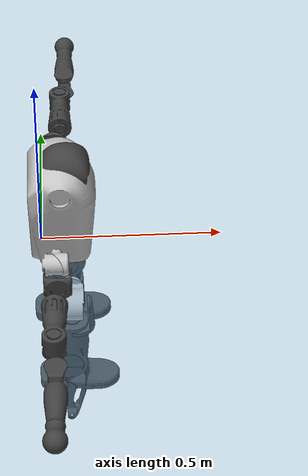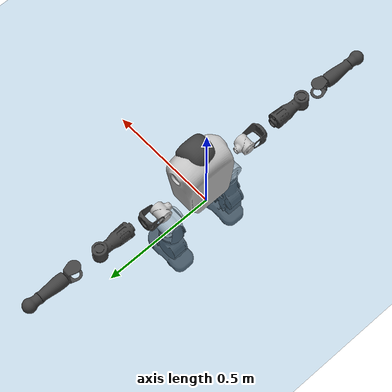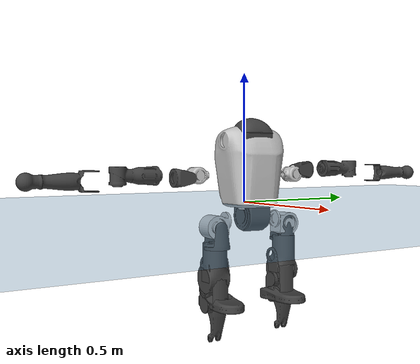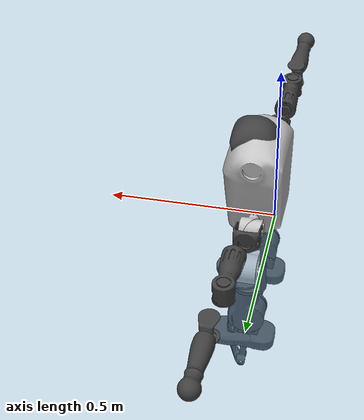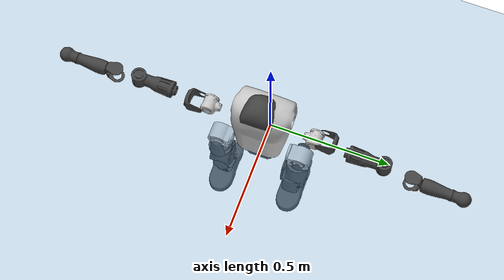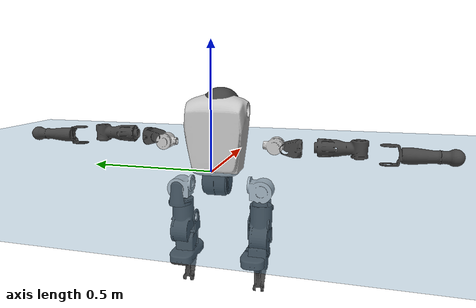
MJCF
<mujoco model="T1">
  <compiler angle="radian" assetdir="assets" balanceinertia="true" inertiafromgeom="false"/>

  <option timestep="0.005" density="1.2" viscosity="2e-05"/>

  <size nkey="1"/>

  <visual>
    <quality shadowsize="8192"/>
    <map shadowclip="0.5"/>
  </visual>

  <default>
    <default class="/">
      <joint armature="0.01" damping="0.01" frictionloss="0.1"/>
      <geom contype="0" conaffinity="0" group="1" solref="-1000 -80"/>
      <site size="0.01 0.005 0.005" group="5"/>
      <general forcelimited="true" biastype="affine" gainprm="25" biasprm="0 -25 -0.6"/>
      <default class="t1">
        <geom rgba="0.25 0.25 0.25 1"/>
        <default class="visual">
          <geom type="mesh" group="2"/>
        </default>
        <default class="collision">
          <geom group="3"/>
        </default>
        <default class="foot">
          <geom size="0.1115 0.05 0.015" type="box" condim="6" group="4" priority="1" solimp="0.015 1 0.015"/>
        </default>
        <default class="reward_collision_sphere">
          <geom group="5" rgba="1 0 0 1"/>
        </default>
      </default>
    </default>
  </default>

  <asset>
    <texture type="skybox" colorspace="auto" name="//unnamed_texture_0" builtin="gradient" rgb1="0.95 0.95 0.95" rgb2="0.95 0.95 0.95" width="100" height="600"/>
    <texture type="2d" colorspace="auto" name="texplane" builtin="checker" rgb1="0.345 0.575 0.748" rgb2="0.345 0.575 0.748" markrgb="1 1 1" width="512" height="512"/>
    <material name="MatPlane" class="/" texture="texplane" texuniform="true" texrepeat="2 2" specular="0.9"/>
    <mesh name="Trunk" class="/" file="Trunk.stl"/>
    <mesh name="H1" class="/" file="H1.stl"/>
    <mesh name="H2" class="/" file="H2.stl"/>
    <mesh name="AL1" class="/" file="AL1.stl"/>
    <mesh name="AL2" class="/" file="AL2.stl"/>
    <mesh name="AL3" class="/" file="AL3.stl"/>
    <mesh name="left_hand_link" class="/" file="left_hand_link.stl"/>
    <mesh name="AR1" class="/" file="AR1.stl"/>
    <mesh name="AR2" class="/" file="AR2.stl"/>
    <mesh name="AR3" class="/" file="AR3.stl"/>
    <mesh name="right_hand_link" class="/" file="right_hand_link.stl"/>
    <mesh name="Waist" class="/" file="Waist.stl"/>
    <mesh name="Hip_Pitch_Left" class="/" file="Hip_Pitch_Left.stl"/>
    <mesh name="Hip_Roll_Left" class="/" file="Hip_Roll_Left.stl"/>
    <mesh name="Hip_Yaw_Left" class="/" file="Hip_Yaw_Left.stl"/>
    <mesh name="Shank_Left" class="/" file="Shank_Left.stl"/>
    <mesh name="Ankle_Cross_Left" class="/" file="Ankle_Cross_Left.stl"/>
    <mesh name="left_foot_link" class="/" file="left_foot_link.stl"/>
    <mesh name="Hip_Pitch_Right" class="/" file="Hip_Pitch_Right.stl"/>
    <mesh name="Hip_Roll_Right" class="/" file="Hip_Roll_Right.stl"/>
    <mesh name="Hip_Yaw_Right" class="/" file="Hip_Yaw_Right.stl"/>
    <mesh name="Shank_Right" class="/" file="Shank_Right.stl"/>
    <mesh name="Ankle_Cross_Right" class="/" file="Ankle_Cross_Right.stl"/>
    <mesh name="right_foot_link" class="/" file="right_foot_link.stl"/>
  </asset>

  <worldbody>
    <geom name="floor" class="/" size="100 100 0.125" type="plane" group="0" material="MatPlane"/>
    <light name="toplight_shadow" class="/" pos="0 0 5" dir="0.0990148 0.0990148 -0.990148" type="directional" ambient="0.04 0.04 0.04" diffuse="0.55 0.55 0.55" specular="0.12 0.12 0.12"/>
    <light name="toplight_fill" class="/" pos="0 0 5" dir="0.0990148 0.0990148 -0.990148" type="directional" castshadow="false" ambient="0.04 0.04 0.04" diffuse="0.3 0.3 0.3" specular="0.08 0.08 0.08"/>
    <body name="trunk" childclass="t1" pos="0.00182259 -0.0126578 0.0170812" quat="0.999959 -0.00636058 -0.00637376 -0.000562691">
      <inertial pos="0.0495742 -0.00106654 0.0451559" quat="0.999937 0.00471344 -0.0097494 -0.00303508" mass="14.5119" diaginertia="0.112787 1.0711 0.00177204"/>
      <joint name="//unnamed_joint_0" type="free" armature="0" damping="0" frictionloss="0"/>
      <geom name="//unnamed_geom_1" class="visual" rgba="0.76 0.76 0.76 1" mesh="Trunk"/>
      <geom name="//unnamed_geom_2" class="collision" size="0.0782578 0.104344 0.156516" pos="0.0587349 0 0.0564786" type="box"/>
      <geom name="//unnamed_geom_3" class="reward_collision_sphere" size="0.119995" pos="0.0587349 0 0.0470655"/>
      <geom name="//unnamed_geom_4" class="reward_collision_sphere" size="0.0156516" pos="0.0587349 0.142863 0"/>
      <geom name="//unnamed_geom_5" class="reward_collision_sphere" size="0.0156516" pos="0.0587349 -0.142863 0"/>
      <geom name="//unnamed_geom_6" class="reward_collision_sphere" size="0.0156516" pos="0.0587349 0.179839 0.0847179"/>
      <geom name="//unnamed_geom_7" class="reward_collision_sphere" size="0.0156516" pos="0.0587349 -0.179839 0.0847179"/>
      <site name="imu" pos="0.0844013 0.0247702 0.0119933" size="0.0104344"/>
      <camera name="track" pos="0 -3.36148 0" quat="0.707107 0.707107 0 0" mode="trackcom"/>
      <camera name="ego_camera" pos="0.119428 0 0.197675" quat="-0.5 -0.5 0.5 0.5"/>
      <body name="H1" pos="0.0483563 -0.000587862 0.101129" quat="0.999966 -0.000955375 0.00709265 -0.00397939">
        <inertial pos="-0.0151079 -0.0132284 0.0193829" quat="0.773565 -0.0189974 0.0142099 0.633273" mass="0.390365" diaginertia="0.000171135 0.0022116 3.70546e-06"/>
        <joint name="AAHead_yaw" pos="0 0 0" axis="-0.0150553 -0.0158072 0.999762" stiffness="0.00176823" range="-1.19665 1.73114" armature="0.00817865" damping="0.0576728" frictionloss="0.0545924"/>
        <geom name="//unnamed_geom_8" class="visual" mesh="H1"/>
        <body name="H2" pos="0.00769488 -0.00794749 0.0154754" quat="0.999961 0.000281284 0.000278283 0.00878021">
          <inertial pos="0.00120284 -0.004357 0.0484892" quat="0.988407 0.106201 -0.0747648 -0.0786399" mass="0.853707" diaginertia="0.00208223 0.0295675 3.87225e-05"/>
          <joint name="Head_pitch" pos="0 0 0" axis="-0.033119 -0.996531 -0.076345" stiffness="0.0524736" range="-0.945569 0.00958688" armature="0.00274834" damping="0" frictionloss="0.0125392"/>
          <geom name="//unnamed_geom_9" class="visual" mesh="H2"/>
          <geom name="//unnamed_geom_10" class="collision" size="0.083475" pos="0.00978915 0 0.0517721"/>
          <geom name="//unnamed_geom_11" class="reward_collision_sphere" size="0.0939094" pos="0.0195783 0 0.0470655"/>
        </body>
      </body>
      <body name="AL1" pos="0.0391271 0.166656 0.0917454" quat="0.999997 -0.00115623 0.00142943 -0.00187476">
        <inertial pos="0.0172049 0.0855763 0.0106454" quat="0.536127 0.510266 -0.511755 0.436238" mass="0.690143" diaginertia="0.00127266 0.015299 8.25305e-06"/>
        <joint name="Left_Shoulder_Pitch" pos="0 0 0" axis="0.0204423 0.999735 0.0105413" range="-3.18485 1.19195" armature="0.00756367" damping="0" frictionloss="0.155509"/>
        <geom name="//unnamed_geom_12" class="visual" rgba="0.76 0.76 0.76 1" mesh="AL1"/>
        <body name="AL2" pos="0.00047889 0.0780364 0.0172918" quat="0.999964 0.00297509 0.00522554 -0.00591972">
          <inertial pos="0.0131513 0.0667074 0.0157077" quat="0.488147 0.513282 -0.449439 0.544298" mass="0.144223" diaginertia="0.000382584 0.00517563 3.56388e-06"/>
          <joint name="Left_Shoulder_Roll" pos="0 0 0" axis="-0.996331 0.06229 -0.0586971" stiffness="0.00347176" range="-1.61686 1.8866" armature="0.00704515" damping="0" frictionloss="0.193104"/>
          <geom name="//unnamed_geom_13" class="visual" mesh="AL2"/>
          <body name="AL3" pos="0.0174108 0.112547 0.00586351" quat="0.999997 -0.000466491 0.00118809 0.00216392">
            <inertial pos="0.00658521 0.144471 -0.0159632" quat="0.706151 0.708023 -9.3447e-05 -0.00740196" mass="1.23079" diaginertia="0.0101895 0.183696 1.65499e-05"/>
            <joint name="Left_Elbow_Pitch" pos="0 0 0" axis="0.00847538 -0.996696 -0.0807851" range="-2.40334 2.26077" armature="0.015281" damping="0.0210027" frictionloss="0.0524285"/>
            <geom name="//unnamed_geom_14" class="visual" mesh="AL3"/>
            <geom name="//unnamed_geom_15" class="collision" size="0.0313031 0.0782578" pos="0 0.0840371 0" quat="0.707105 0.707108 0 0" type="cylinder"/>
            <geom name="//unnamed_geom_16" class="reward_collision_sphere" size="0.0375637"/>
            <body name="left_hand_link" pos="0.0128009 0.263787 -0.0180953" quat="0.999989 -0.00083324 -0.00222054 -0.00394659">
              <inertial pos="0.000432239 0.173677 -0.013414" quat="0.716337 0.697639 -0.0106795 -0.00683651" mass="0.324883" diaginertia="0.00694229 0.0709236 3.86774e-06"/>
              <joint name="Left_Elbow_Yaw" pos="0 0 0" axis="-0.0359893 -0.0702468 0.99688" stiffness="0.0682299" range="-2.61142 -0.0668769" armature="0.00808431" damping="0" frictionloss="0.0391621"/>
              <geom name="//unnamed_geom_17" class="visual" mesh="left_hand_link"/>
              <geom name="//unnamed_geom_18" class="collision" size="0.0313031 0.0913008" pos="0 0.218496 0" quat="0.707105 0.707108 0 0" type="cylinder"/>
              <geom name="//unnamed_geom_19" class="reward_collision_sphere" size="0.0521719"/>
              <geom name="//unnamed_geom_20" class="reward_collision_sphere" size="0.0365203" pos="0 0.184882 0"/>
              <geom name="//unnamed_geom_21" class="reward_collision_sphere" size="0.0365203" pos="0 0.36136 0"/>
            </body>
          </body>
        </body>
      </body>
      <body name="AR1" pos="0.0420118 -0.183252 0.0878169" quat="0.999965 0.00332169 0.00375589 -0.00671436">
        <inertial pos="-0.00142012 -0.0651863 -0.00719975" quat="0.45937 0.520528 -0.507886 0.509983" mass="0.700425" diaginertia="0.00162235 0.0188227 7.77541e-06"/>
        <joint name="Right_Shoulder_Pitch" pos="0 0 0" axis="0.0261847 -0.999174 0.0310694" stiffness="0.0779636" range="-1.21334 3.0563" armature="0.014888" damping="0.0858108" frictionloss="0.077764"/>
        <geom name="//unnamed_geom_22" class="visual" rgba="0.76 0.76 0.76 1" mesh="AR1"/>
        <body name="AR2" pos="0.00298099 -0.0875803 -0.00842642" quat="0.999981 -0.00139575 0.00599392 0.000515806">
          <inertial pos="0.0135314 -0.0638027 -0.0130381" quat="0.501703 0.497301 -0.517941 0.482414" mass="0.218851" diaginertia="0.000281108 0.00500893 4.91483e-06"/>
          <joint name="Right_Shoulder_Roll" pos="0 0 0" axis="-0.999947 -0.0102635 -0.000404348" stiffness="0.0213643" range="-1.89905 1.52632" armature="0.00985313" damping="0" frictionloss="0.0224843"/>
          <geom name="//unnamed_geom_23" class="visual" mesh="AR2"/>
          <body name="AR3" pos="-0.00722216 -0.116776 0.00863779" quat="0.999992 -0.00148703 0.000567044 -0.00362321">
            <inertial pos="0.0175987 -0.146391 -0.00723723" quat="0.74993 0.661 -0.0252535 0.00684342" mass="0.840663" diaginertia="0.012347 0.187878 1.41992e-05"/>
            <joint name="Right_Elbow_Pitch" pos="0 0 0" axis="0.0559268 0.998427 0.00386792" stiffness="0.0912041" range="-2.2718 2.49" armature="0.0186072" damping="0.0236093" frictionloss="0.130375"/>
            <geom name="//unnamed_geom_24" class="visual" mesh="AR3"/>
            <geom name="//unnamed_geom_25" class="collision" size="0.0313031 0.0782578" pos="0 -0.0840371 0" quat="0.707105 0.707108 0 0" type="cylinder"/>
            <geom name="//unnamed_geom_26" class="reward_collision_sphere" size="0.0375637"/>
            <body name="right_hand_link" pos="0.0050269 -0.243977 -0.0176382" quat="1 0.000201965 0.000430042 0.000175166">
              <inertial pos="0.0127742 -0.198186 0.00862178" quat="0.715985 0.697022 0.0387784 0.00475074" mass="0.421451" diaginertia="0.00734814 0.138448 4.87866e-06"/>
              <joint name="Right_Elbow_Yaw" pos="0 0 0" axis="-0.0284163 -0.0303133 0.999136" stiffness="0.0414112" range="0.0943602 2.46999" armature="0.0156032" damping="0.0567451" frictionloss="0.0821295"/>
              <geom name="//unnamed_geom_27" class="visual" mesh="right_hand_link"/>
              <geom name="//unnamed_geom_28" class="collision" size="0.0313031 0.0913008" pos="0 -0.218496 0" quat="0.707105 0.707108 0 0" type="cylinder"/>
              <geom name="//unnamed_geom_29" class="reward_collision_sphere" size="0.0521719"/>
              <geom name="//unnamed_geom_30" class="reward_collision_sphere" size="0.0365203" pos="0 -0.184882 0"/>
              <geom name="//unnamed_geom_31" class="reward_collision_sphere" size="0.0365203" pos="0 -0.36136 0"/>
            </body>
          </body>
        </body>
      </body>
      <body name="Waist" pos="0.0593607 0.00640815 -0.0671068" quat="1 -0.000582605 -5.8267e-05 -0.000278056">
        <inertial pos="-0.00925118 -0.00329529 -0.00628776" quat="0.982596 0.00629893 -0.185358 -0.010409" mass="2.65928" diaginertia="0.00508585 0.0515745 0.000115162"/>
        <joint name="Waist" pos="0 0 0" axis="-0.0230356 0.0306688 0.999264" stiffness="0.0610848" range="-1.29411 1.34788" armature="0.00978836" damping="0.0934781" frictionloss="0.112164"/>
        <geom name="//unnamed_geom_32" class="visual" mesh="Waist"/>
        <body name="Hip_Pitch_Left" pos="-0.00357369 0.159952 -0.0157257" quat="1 -0.000446824 -0.000200093 -0.000176001">
          <inertial pos="0.0131719 -0.0156597 0.00947686" quat="0.974805 0.221817 -0.020403 -0.0116706" mass="0.910695" diaginertia="0.00135628 0.018395 2.63671e-05"/>
          <joint name="Left_Hip_Pitch" pos="0 0 0" axis="-0.00142967 0.998207 -0.0598436" stiffness="0.0739442" range="-2.09673 1.50498" armature="0.0110211" damping="0.0859296" frictionloss="0.183824"/>
          <geom name="//unnamed_geom_33" class="visual" rgba="0.76 0.76 0.76 1" mesh="Hip_Pitch_Left"/>
          <body name="Hip_Roll_Left" pos="-0.0103419 -0.002414 -0.00988351" quat="0.999999 0.000785324 0.000525486 -0.000358761">
            <inertial pos="0.00508825 0.00678526 -0.0254367" quat="0.728641 -0.0445609 -0.0176365 0.683218" mass="0.38392" diaginertia="0.00140781 0.0143791 9.47241e-06"/>
            <joint name="Left_Hip_Roll" pos="0 0 0" axis="-0.999024 0.0292658 -0.0330904" range="-1.84025 0.224785" armature="0.0106602" damping="0" frictionloss="0.174589"/>
            <geom name="//unnamed_geom_34" class="visual" mesh="Hip_Roll_Left"/>
            <geom name="//unnamed_geom_35" class="reward_collision_sphere" size="0.0573891"/>
            <body name="Hip_Yaw_Left" pos="0.0143809 -0.00633367 -0.0566665" quat="0.999999 -0.000582781 -0.000828968 -3.98827e-05">
              <inertial pos="-0.0137218 -0.00283152 -0.0253375" quat="0.704646 -0.00795463 -0.0658913 0.706448" mass="2.76086" diaginertia="0.0170695 0.292405 5.61606e-05"/>
              <joint name="Left_Hip_Yaw" pos="0 0 0" axis="0.068675 0.0111908 -0.997576" stiffness="0.0923356" range="-0.961085 0.725275" armature="0.0180588" damping="0.071742" frictionloss="0.18712"/>
              <geom name="//unnamed_geom_36" class="visual" mesh="Hip_Yaw_Left"/>
              <geom name="//unnamed_geom_37" class="collision" size="0.0521719 0.083475" type="cylinder"/>
              <body name="Shank_Left" pos="-0.00165587 -0.0165261 -0.0783481" quat="0.999961 0.00471272 -0.00448254 0.00597674">
                <inertial pos="-0.0168371 0.0189641 -0.0491787" quat="0.998767 0.0107152 -0.0473282 -0.0104965" mass="1.75623" diaginertia="0.0219798 0.421986 3.53388e-05"/>
                <joint name="Left_Knee_Pitch" pos="0 0 0" axis="-0.0427447 0.998417 -0.0365492" range="0.152843 2.36523" armature="0.00350213" damping="0.0484108" frictionloss="0.189918"/>
                <geom name="//unnamed_geom_38" class="visual" mesh="Shank_Left"/>
                <geom name="//unnamed_geom_39" class="collision" size="0.0521719 0.0782578" pos="0 0 -0.0564786" type="cylinder"/>
                <geom name="//unnamed_geom_40" class="reward_collision_sphere" size="0.0678234"/>
                <body name="Ankle_Cross_Left" pos="0.0175273 0.00913462 -0.137269" quat="1 0.000110481 -0.000288871 -0.000137369">
                  <inertial pos="-0.00825205 0.00466055 -0.00751704" quat="0.454802 0.601887 0.53961 0.373775" mass="0.0661492" diaginertia="2.56297e-05 0.000327365 2.28944e-07"/>
                  <joint name="Left_Ankle_Pitch" pos="0 0 0" axis="0.0482389 0.998125 0.0376817" stiffness="0.00444245" range="-0.911455 0.663986" armature="0.0099017" damping="0" frictionloss="0.117863"/>
                  <geom name="//unnamed_geom_41" class="visual" mesh="Ankle_Cross_Left"/>
                  <body name="left_foot_link" pos="-0.0137129 -0.0031106 -0.0110801" quat="0.99998 -0.00178142 -0.00446494 -0.00399321">
                    <inertial pos="-0.00398404 0.00115198 -0.0226329" quat="4.2731e-05 0.620443 0.002976 0.784246" mass="1.00221" diaginertia="0.00316032 0.0374997 6.422e-05"/>
                    <joint name="Left_Ankle_Roll" pos="0 0 0" axis="-0.998234 0.010625 0.0584419" range="-0.17527 0.236775" armature="0.0105951" damping="0" frictionloss="0.0996064"/>
                    <geom name="//unnamed_geom_42" class="visual" mesh="left_foot_link"/>
                    <geom name="left_foot" class="foot" size="0.0448443 0.0190826 0.00946289" pos="0.00978915 0 -0.00705983"/>
                    <geom name="//unnamed_geom_44" class="reward_collision_sphere" size="0.0542587" pos="0.00978915 0 -0.00705983"/>
                    <geom name="//unnamed_geom_45" class="reward_collision_sphere" size="0.0313031" pos="0.0929969 -0.0386571 -0.00705983"/>
                    <geom name="//unnamed_geom_46" class="reward_collision_sphere" size="0.0313031" pos="-0.068524 -0.0386571 -0.00705983"/>
                    <site name="left_foot" class="foot" pos="0.00978915 0 -0.00705983" size="0.0104344"/>
                  </body>
                </body>
              </body>
            </body>
          </body>
        </body>
        <body name="Hip_Pitch_Right" pos="0.0139777 -0.180409 -0.0157182" quat="0.999965 0.00556399 0.00626958 -1.23886e-05">
          <inertial pos="0.0012656 0.030493 -0.0160918" quat="0.97345 -0.226176 -0.0350065 -0.00368439" mass="1.03894" diaginertia="0.00136754 0.0178809 2.24153e-05"/>
          <joint name="Right_Hip_Pitch" pos="0 0 0" axis="0.0161673 -0.999792 -0.0124217" stiffness="0.0592958" range="-1.81673 2.11243" armature="0.00912701" damping="0" frictionloss="0.0130723"/>
          <geom name="//unnamed_geom_47" class="visual" rgba="0.76 0.76 0.76 1" mesh="Hip_Pitch_Right"/>
          <body name="Hip_Roll_Right" pos="0.0160722 0.00389254 -0.0237447" quat="0.999998 0.000925479 0.00118598 0.000966847">
            <inertial pos="0.0100046 -0.00124811 -0.0359255" quat="0.707555 -0.00547856 -0.00599369 0.706611" mass="0.436508" diaginertia="0.00194579 0.0180837 1.06446e-05"/>
            <joint name="Right_Hip_Roll" pos="0 0 0" axis="-0.998452 -0.0375937 0.0409949" range="-0.454199 1.75577" armature="0.0111971" damping="0.0629788" frictionloss="0.0266048"/>
            <geom name="//unnamed_geom_48" class="visual" mesh="Hip_Roll_Right"/>
            <geom name="//unnamed_geom_49" class="reward_collision_sphere" size="0.0573891"/>
            <body name="Hip_Yaw_Right" pos="-0.014473 -0.000362678 -0.0538415" quat="1 0.000253103 0.000452446 0.000485011">
              <inertial pos="0.00816073 -0.0185773 -0.0488515" quat="0.702639 -0.0287401 -0.0370156 0.710001" mass="3.37211" diaginertia="0.0227227 0.371845 8.23138e-05"/>
              <joint name="Right_Hip_Yaw" pos="0 0 0" axis="0.0426571 0.0179631 -0.998928" stiffness="0.0328689" range="-1.12999 0.908948" armature="0.0116985" damping="0" frictionloss="0.104119"/>
              <geom name="//unnamed_geom_50" class="visual" mesh="Hip_Yaw_Right"/>
              <geom name="//unnamed_geom_51" class="collision" size="0.0521719 0.083475" type="cylinder"/>
              <body name="Shank_Right" pos="-0.00943471 0.00365536 -0.0807845" quat="0.999998 -0.00152504 0.000623563 0.000959088">
                <inertial pos="0.0133411 -0.00942342 -0.0447415" quat="0.994639 -0.0552962 0.0182595 -0.0854508" mass="2.07235" diaginertia="0.0418496 0.472312 5.25829e-05"/>
                <joint name="Right_Knee_Pitch" pos="0 0 0" axis="-0.00155066 -0.999993 0.00347042" range="-2.31702 0.320771" armature="0.00961479" damping="0" frictionloss="0.173417"/>
                <geom name="//unnamed_geom_52" class="visual" mesh="Shank_Right"/>
                <geom name="//unnamed_geom_53" class="collision" size="0.0521719 0.0782578" pos="0 0 -0.0564786" type="cylinder"/>
                <geom name="//unnamed_geom_54" class="reward_collision_sphere" size="0.0678234"/>
                <body name="Ankle_Cross_Right" pos="0.0112969 0.0104718 -0.116171" quat="0.99999 -0.00144447 -0.00426115 5.2295e-05">
                  <inertial pos="-0.000416188 0.0112414 0.000456419" quat="0.414028 0.595629 0.543446 0.42246" mass="0.104654" diaginertia="2.78978e-05 0.000405019 2.85338e-07"/>
                  <joint name="Right_Ankle_Pitch" pos="0 0 0" axis="-0.000515092 -1 -0.000209212" range="-0.728355 0.61983" armature="0.0132157" damping="0" frictionloss="0.0955037"/>
                  <geom name="//unnamed_geom_55" class="visual" mesh="Ankle_Cross_Right"/>
                  <body name="right_foot_link" pos="0.00581227 0.00629431 -0.0180982" quat="0.999999 -0.000239818 0.000381759 0.00144551">
                    <inertial pos="-0.0047349 0.00943156 -0.0222424" quat="-0.0123672 0.633135 -0.0219628 0.773631" mass="0.8466" diaginertia="0.00252006 0.037322 5.6051e-05"/>
                    <joint name="Right_Ankle_Roll" pos="0 0 0" axis="-1 0.000672425 0.000445594" range="-0.28383 0.375573" armature="0.00798918" damping="0.0507679" frictionloss="0.00599336"/>
                    <geom name="//unnamed_geom_56" class="visual" mesh="right_foot_link"/>
                    <geom name="right_foot" class="foot" size="0.0575008 0.0880726 0.00456432" pos="0.00978915 0 -0.00705983"/>
                    <geom name="//unnamed_geom_58" class="reward_collision_sphere" size="0.0417375"/>
                    <geom name="//unnamed_geom_59" class="reward_collision_sphere" size="0.0313031" pos="0.00978915 0 -0.00705983"/>
                    <geom name="//unnamed_geom_60" class="reward_collision_sphere" size="0.0313031" pos="0.0929969 0.0386571 -0.00705983"/>
                    <geom name="//unnamed_geom_61" class="reward_collision_sphere" size="0.0313031" pos="-0.068524 0.0386571 -0.00705983"/>
                    <site name="right_foot" class="foot" pos="0.00978915 0 -0.00705983" size="0.0104344"/>
                  </body>
                </body>
              </body>
            </body>
          </body>
        </body>
      </body>
    </body>
  </worldbody>

  <contact>
    <pair class="/" geom1="floor" geom2="left_foot" name="//unnamed_contact_0"/>
    <pair class="/" geom1="floor" geom2="right_foot" name="//unnamed_contact_1"/>
  </contact>

  <actuator>
    <general name="AAHead_yaw" class="/" joint="AAHead_yaw" forcerange="-7.48091 7.48091" gainprm="16.7472" biasprm="0 -16.7472 -0.625749"/>
    <general name="Head_pitch" class="/" joint="Head_pitch" forcerange="-4.43537 4.43537" gainprm="16.7472" biasprm="0 -16.7472 -0.625749"/>
    <general name="Left_Shoulder_Pitch" class="/" joint="Left_Shoulder_Pitch" forcerange="-25.9259 25.9259" gainprm="16.7472" biasprm="0 -16.7472 -0.625749"/>
    <general name="Left_Shoulder_Roll" class="/" joint="Left_Shoulder_Roll" forcerange="-13.2276 13.2276" gainprm="16.7472" biasprm="0 -16.7472 -0.625749"/>
    <general name="Left_Elbow_Pitch" class="/" joint="Left_Elbow_Pitch" forcerange="-29.704 29.704" gainprm="16.7472" biasprm="0 -16.7472 -0.625749"/>
    <general name="Left_Elbow_Yaw" class="/" joint="Left_Elbow_Yaw" forcerange="-18.5045 18.5045" gainprm="16.7472" biasprm="0 -16.7472 -0.625749"/>
    <general name="Right_Shoulder_Pitch" class="/" joint="Right_Shoulder_Pitch" forcerange="-13.9554 13.9554" gainprm="16.7472" biasprm="0 -16.7472 -0.625749"/>
    <general name="Right_Shoulder_Roll" class="/" joint="Right_Shoulder_Roll" forcerange="-10.3127 10.3127" gainprm="16.7472" biasprm="0 -16.7472 -0.625749"/>
    <general name="Right_Elbow_Pitch" class="/" joint="Right_Elbow_Pitch" forcerange="-19.0693 19.0693" gainprm="16.7472" biasprm="0 -16.7472 -0.625749"/>
    <general name="Right_Elbow_Yaw" class="/" joint="Right_Elbow_Yaw" forcerange="-16.0011 16.0011" gainprm="16.7472" biasprm="0 -16.7472 -0.625749"/>
    <general name="Waist" class="/" joint="Waist" forcerange="-35.9091 35.9091" gainprm="16.7472" biasprm="0 -16.7472 -0.625749"/>
    <general name="Left_Hip_Pitch" class="/" joint="Left_Hip_Pitch" forcerange="-48.607 48.607" gainprm="16.7472" biasprm="0 -16.7472 -0.625749"/>
    <general name="Left_Hip_Roll" class="/" joint="Left_Hip_Roll" forcerange="-10.7351 10.7351" gainprm="16.7472" biasprm="0 -16.7472 -0.625749"/>
    <general name="Left_Hip_Yaw" class="/" joint="Left_Hip_Yaw" forcerange="-45.7696 45.7696" gainprm="16.7472" biasprm="0 -16.7472 -0.625749"/>
    <general name="Left_Knee_Pitch" class="/" joint="Left_Knee_Pitch" forcerange="-22.8519 22.8519" gainprm="16.7472" biasprm="0 -16.7472 -0.625749"/>
    <general name="Left_Ankle_Pitch" class="/" joint="Left_Ankle_Pitch" forcerange="-30.3409 30.3409" gainprm="16.7472" biasprm="0 -16.7472 -0.625749"/>
    <general name="Left_Ankle_Roll" class="/" joint="Left_Ankle_Roll" forcerange="-22.4072 22.4072" gainprm="16.7472" biasprm="0 -16.7472 -0.625749"/>
    <general name="Right_Hip_Pitch" class="/" joint="Right_Hip_Pitch" forcerange="-75.0559 75.0559" gainprm="16.7472" biasprm="0 -16.7472 -0.625749"/>
    <general name="Right_Hip_Roll" class="/" joint="Right_Hip_Roll" forcerange="-37.8487 37.8487" gainprm="16.7472" biasprm="0 -16.7472 -0.625749"/>
    <general name="Right_Hip_Yaw" class="/" joint="Right_Hip_Yaw" forcerange="-16.5417 16.5417" gainprm="16.7472" biasprm="0 -16.7472 -0.625749"/>
    <general name="Right_Knee_Pitch" class="/" joint="Right_Knee_Pitch" forcerange="-59.5006 59.5006" gainprm="16.7472" biasprm="0 -16.7472 -0.625749"/>
    <general name="Right_Ankle_Pitch" class="/" joint="Right_Ankle_Pitch" forcerange="-19.7554 19.7554" gainprm="16.7472" biasprm="0 -16.7472 -0.625749"/>
    <general name="Right_Ankle_Roll" class="/" joint="Right_Ankle_Roll" forcerange="-18.1715 18.1715" gainprm="16.7472" biasprm="0 -16.7472 -0.625749"/>
  </actuator>

  <sensor>
    <gyro site="imu" name="imu_angular_velocity"/>
    <velocimeter site="imu" name="imu_linear_velocity"/>
    <framelinvel objtype="site" objname="left_foot" name="left_foot_global_linear_velocity"/>
    <framelinvel objtype="site" objname="right_foot" name="right_foot_global_linear_velocity"/>
  </sensor>

  <keyframe>
    <key name="home" qpos="0 0 0.6385 1 0 0 0 0 0 0 1.4 0 -0.4 0 -1.4 0 0.4 0 -0.4 0 0 0.8 -0.4 0 0.4 0 0 -0.8 0.4 0"/>
  </keyframe>
</mujoco>
